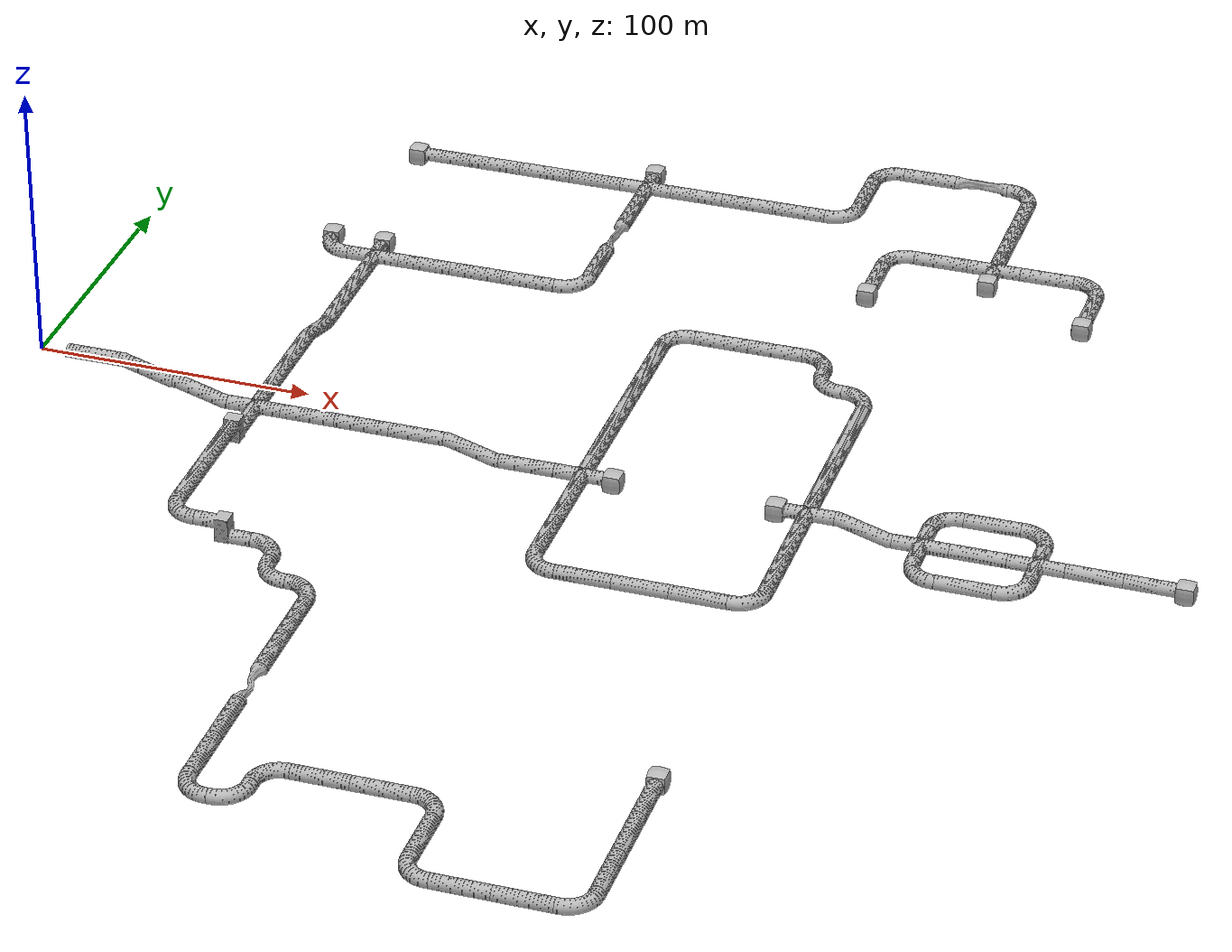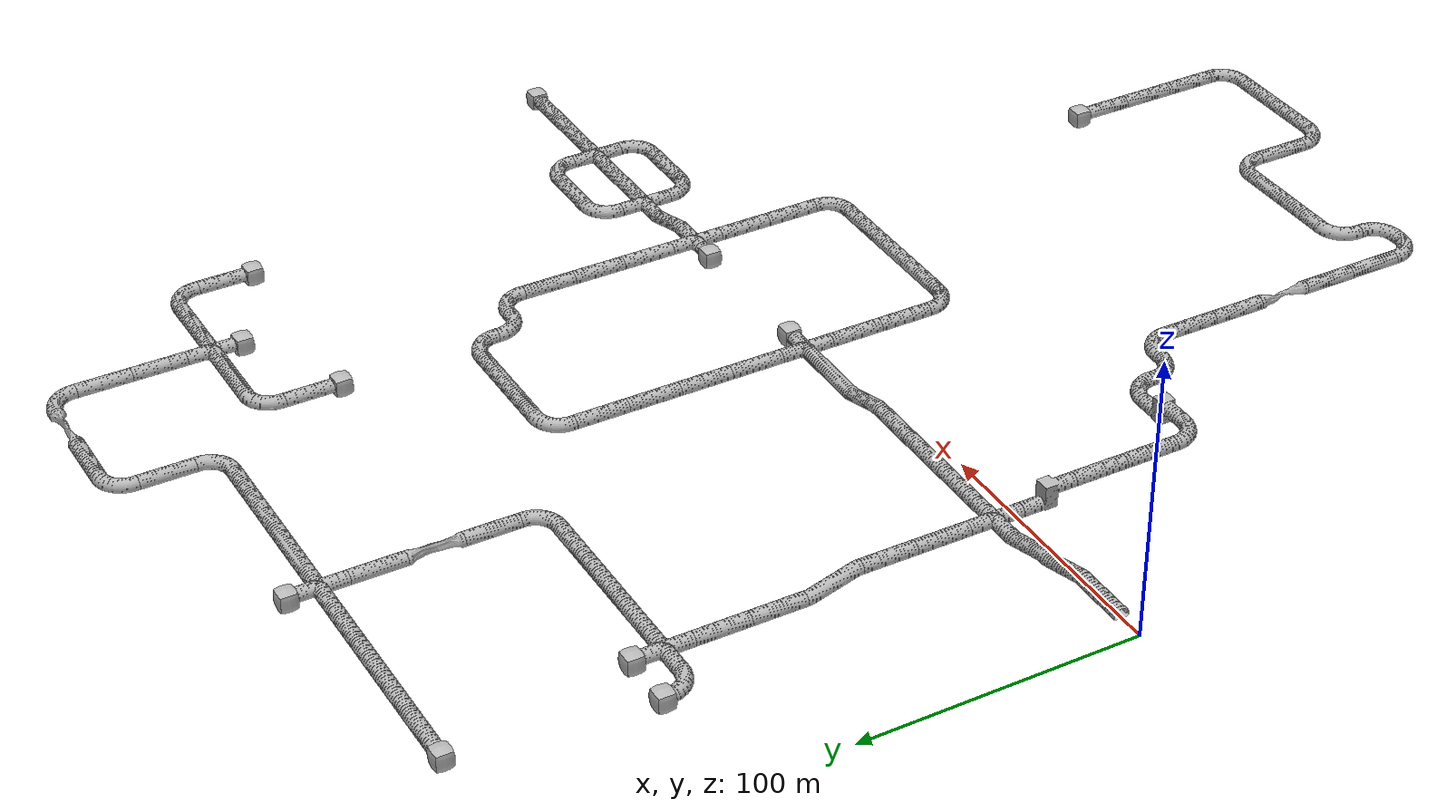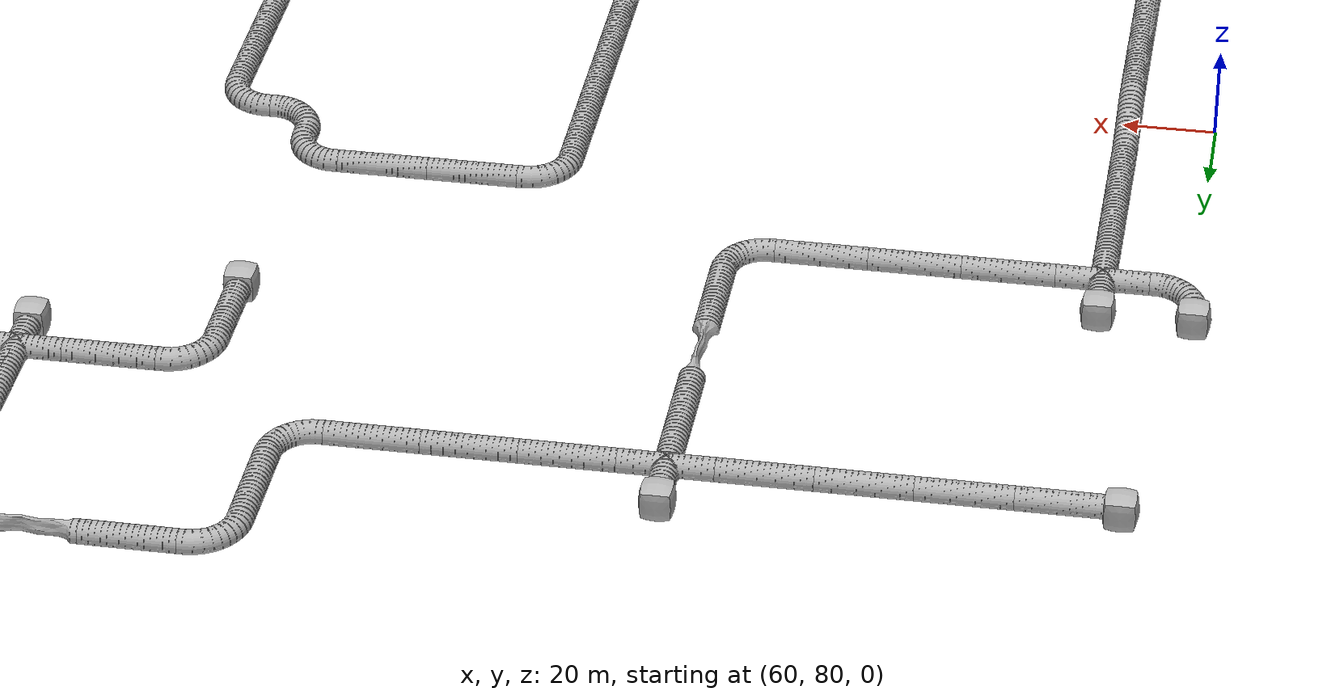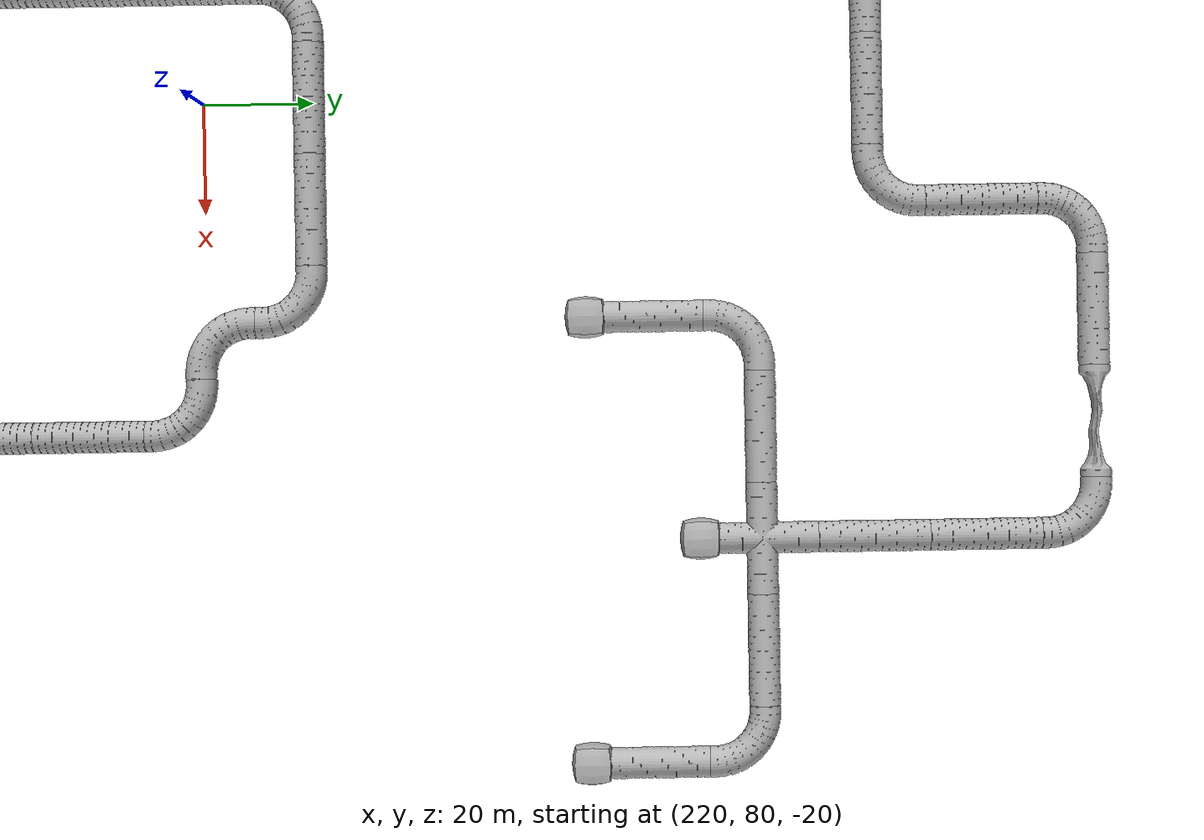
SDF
<sdf version="1.6">
 <world name="tunnel_qual">
  <scene>
   <ambient>0.2 0.2 0.2 1.0</ambient>
   <background>0.34 0.39 0.43 1.0</background>
   <grid>false</grid>
   <origin_visual>false</origin_visual>
  </scene>
  <include><name>artifact_origin</name><pose>2 4 0.5 0 0 0</pose><uri>model://fiducial</uri></include>
  <include>
   <name>tile_1</name>
   <uri>model://tunnel_tile_2</uri>
   <pose>240.000000 240.000000 -15.000000 0 0 0.000000</pose>
  </include>
  <include>
   <name>tile_2</name>
   <uri>model://tunnel_tile_5</uri>
   <pose>260.000000 240.000000 -15.000000 0 0 1.570796</pose>
  </include>
  <include>
   <name>tile_3</name>
   <uri>model://constrained_tunnel_tile_tall</uri>
   <pose>280.000000 240.000000 -15.000000 0 0 1.570796</pose>
  </include>
  <include>
   <name>tile_4</name>
   <uri>model://tunnel_tile_2</uri>
   <pose>300.000000 240.000000 -15.000000 0 0 4.712389</pose>
  </include>
  <include>
   <name>tile_5</name>
   <uri>model://tunnel_tile_5</uri>
   <pose>240.000000 220.000000 -15.000000 0 0 0.000000</pose>
  </include>
  <include>
   <name>radio_1</name>
   <uri>model://Radio</uri>
   <pose>241.500000 220.000000 -15.000000 0 0 0.000000</pose>
  </include>
  <include>
   <name>tile_6</name>
   <uri>model://tunnel_tile_5</uri>
   <pose>300.000000 220.000000 -15.000000 0 0 0.000000</pose>
  </include>
  <include>
   <name>tile_7</name>
   <uri>model://tunnel_tile_5</uri>
   <pose>80.000000 200.000000 -15.000000 0 0 1.570796</pose>
  </include>
  <include>
   <name>tile_8</name>
   <uri>model://tunnel_tile_blocker</uri>
   <pose>69.000000 200.000000 -15.000000 0 0 0.000000</pose>
  </include>
  <include>
   <name>tile_9</name>
   <uri>model://tunnel_tile_5</uri>
   <pose>100.000000 200.000000 -15.000000 0 0 1.570796</pose>
  </include>
  <include>
   <name>tile_10</name>
   <uri>model://tunnel_tile_5</uri>
   <pose>120.000000 200.000000 -15.000000 0 0 1.570796</pose>
  </include>
  <include>
   <name>tile_11</name>
   <uri>model://tunnel_tile_5</uri>
   <pose>140.000000 200.000000 -15.000000 0 0 1.570796</pose>
  </include>
  <include>
   <name>tile_12</name>
   <uri>model://tunnel_tile_1</uri>
   <pose>160.000000 200.000000 -15.000000 0 0 0.000000</pose>
  </include>
  <include>
   <name>tile_13</name>
   <uri>model://tunnel_tile_blocker</uri>
   <pose>160.000000 211.000000 -15.000000 0 0 0.000000</pose>
  </include>
  <include>
   <name>tile_14</name>
   <uri>model://tunnel_tile_5</uri>
   <pose>180.000000 200.000000 -15.000000 0 0 1.570796</pose>
  </include>
  <include>
   <name>tile_15</name>
   <uri>model://tunnel_tile_5</uri>
   <pose>200.000000 200.000000 -15.000000 0 0 1.570796</pose>
  </include>
  <include>
   <name>tile_16</name>
   <uri>model://tunnel_tile_5</uri>
   <pose>220.000000 200.000000 -15.000000 0 0 1.570796</pose>
  </include>
  <include>
   <name>backpack_1</name>
   <uri>model://Backpack</uri>
   <pose>219.000000 202.000000 -15.000000 0 0 0.000000</pose>
  </include>
  <include>
   <name>tile_17</name>
   <uri>model://tunnel_tile_2</uri>
   <pose>240.000000 200.000000 -15.000000 0 0 3.141593</pose>
  </include>
  <include>
   <name>tile_18</name>
   <uri>model://tunnel_tile_5</uri>
   <pose>300.000000 200.000000 -15.000000 0 0 0.000000</pose>
  </include>
  <include>
   <name>tile_19</name>
   <uri>model://tunnel_tile_5</uri>
   <pose>160.000000 180.000000 -15.000000 0 0 0.000000</pose>
  </include>
  <include>
   <name>tile_20</name>
   <uri>model://tunnel_tile_2</uri>
   <pose>260.000000 180.000000 -15.000000 0 0 0.000000</pose>
  </include>
  <include>
   <name>tile_21</name>
   <uri>model://tunnel_tile_5</uri>
   <pose>280.000000 180.000000 -15.000000 0 0 1.570796</pose>
  </include>
  <include>
   <name>tile_22</name>
   <uri>model://tunnel_tile_1</uri>
   <pose>300.000000 180.000000 -15.000000 0 0 0.000000</pose>
  </include>
  <include>
   <name>tile_23</name>
   <uri>model://tunnel_tile_blocker</uri>
   <pose>300.000000 169.000000 -15.000000 0 0 0.000000</pose>
  </include>
  <include>
   <name>tile_24</name>
   <uri>model://tunnel_tile_5</uri>
   <pose>320.000000 180.000000 -15.000000 0 0 1.570796</pose>
  </include>
  <include>
   <name>tile_25</name>
   <uri>model://tunnel_tile_2</uri>
   <pose>340.000000 180.000000 -15.000000 0 0 4.712389</pose>
  </include>
  <include>
   <name>tile_26</name>
   <uri>model://constrained_tunnel_tile_tall</uri>
   <pose>160.000000 160.000000 -15.000000 0 0 0.000000</pose>
  </include>
  <include>
   <name>tile_27</name>
   <uri>model://tunnel_tile_5</uri>
   <pose>260.000000 160.000000 -15.000000 0 0 0.000000</pose>
  </include>
  <include>
   <name>phone_1</name>
   <uri>model://Phone</uri>
   <pose>260.000000 160.000000 -14.996000 -1.570796 0 0.000000</pose>
  </include>
  <include>
   <name>tile_28</name>
   <uri>model://tunnel_tile_blocker</uri>
   <pose>260.000000 149.000000 -15.000000 0 0 0.000000</pose>
  </include>
  <include>
   <name>tile_29</name>
   <uri>model://tunnel_tile_5</uri>
   <pose>340.000000 160.000000 -15.000000 0 0 0.000000</pose>
  </include>
  <include>
   <name>toolbox_1</name>
   <uri>model://Toolbox</uri>
   <pose>342.000000 160.000000 -15.000000 0 0 0.000000</pose>
  </include>
  <include>
   <name>tile_30</name>
   <uri>model://tunnel_tile_blocker</uri>
   <pose>340.000000 149.000000 -15.000000 0 0 0.000000</pose>
  </include>
  <include>
   <name>tile_31</name>
   <uri>model://tunnel_tile_5</uri>
   <pose>160.000000 140.000000 -15.000000 0 0 0.000000</pose>
  </include>
  <include>
   <name>extinguisher_1</name>
   <uri>model://Extinguisher</uri>
   <pose>158.000000 140.000000 -15.000000 0 0 0.000000</pose>
  </include>
  <include>
   <name>tile_32</name>
   <uri>model://tunnel_tile_2</uri>
   <pose>60.000000 120.000000 -15.000000 0 0 1.570796</pose>
  </include>
  <include>
   <name>tile_33</name>
   <uri>model://tunnel_tile_blocker</uri>
   <pose>60.000000 131.000000 -15.000000 0 0 0.000000</pose>
  </include>
  <include>
   <name>tile_34</name>
   <uri>model://tunnel_tile_1</uri>
   <pose>80.000000 120.000000 -15.000000 0 0 0.000000</pose>
  </include>
  <include>
   <name>tile_35</name>
   <uri>model://tunnel_tile_blocker</uri>
   <pose>80.000000 131.000000 -15.000000 0 0 0.000000</pose>
  </include>
  <include>
   <name>tile_36</name>
   <uri>model://tunnel_tile_5</uri>
   <pose>100.000000 120.000000 -15.000000 0 0 1.570796</pose>
  </include>
  <include>
   <name>tile_37</name>
   <uri>model://tunnel_tile_5</uri>
   <pose>120.000000 120.000000 -15.000000 0 0 1.570796</pose>
  </include>
  <include>
   <name>tile_38</name>
   <uri>model://tunnel_tile_5</uri>
   <pose>140.000000 120.000000 -15.000000 0 0 1.570796</pose>
  </include>
  <include>
   <name>tile_39</name>
   <uri>model://tunnel_tile_2</uri>
   <pose>160.000000 120.000000 -15.000000 0 0 3.141593</pose>
  </include>
  <include>
   <name>tile_40</name>
   <uri>model://tunnel_tile_5</uri>
   <pose>80.000000 100.000000 -15.000000 0 0 0.000000</pose>
  </include>
  <include>
   <name>tile_41</name>
   <uri>model://tunnel_tile_2</uri>
   <pose>200.000000 100.000000 -15.000000 0 0 0.000000</pose>
  </include>
  <include>
   <name>tile_42</name>
   <uri>model://tunnel_tile_5</uri>
   <pose>220.000000 100.000000 -15.000000 0 0 1.570796</pose>
  </include>
  <include>
   <name>tile_43</name>
   <uri>model://tunnel_tile_5</uri>
   <pose>240.000000 100.000000 -15.000000 0 0 1.570796</pose>
  </include>
  <include>
   <name>tile_44</name>
   <uri>model://tunnel_tile_2</uri>
   <pose>260.000000 100.000000 -15.000000 0 0 4.712389</pose>
  </include>
  <include>
   <name>tile_45</name>
   <uri>model://tunnel_tile_5</uri>
   <pose>80.000000 80.000000 -15.000000 0 0 0.000000</pose>
  </include>
  <include>
   <name>tile_46</name>
   <uri>model://tunnel_tile_5</uri>
   <pose>200.000000 80.000000 -15.000000 0 0 0.000000</pose>
  </include>
  <include>
   <name>tile_47</name>
   <uri>model://tunnel_tile_2</uri>
   <pose>260.000000 80.000000 -15.000000 0 0 1.570796</pose>
  </include>
  <include>
   <name>radio_2</name>
   <uri>model://Radio</uri>
   <pose>260.000000 82.300000 -15.000000 0 0 0.000000</pose>
  </include>
  <include>
   <name>tile_48</name>
   <uri>model://tunnel_tile_2</uri>
   <pose>280.000000 80.000000 -15.000000 0 0 4.712389</pose>
  </include>
  <include>
   <name>tile_49</name>
   <uri>model://tunnel_tile_6</uri>
   <pose>80.000000 60.000000 -15.000000 0 0 3.141593</pose>
  </include>
  <include>
   <name>tile_50</name>
   <uri>model://tunnel_tile_5</uri>
   <pose>200.000000 60.000000 -15.000000 0 0 0.000000</pose>
  </include>
  <include>
   <name>tile_51</name>
   <uri>model://tunnel_tile_5</uri>
   <pose>280.000000 60.000000 -15.000000 0 0 0.000000</pose>
  </include>
  <include>
   <name>toolbox_2</name>
   <uri>model://Toolbox</uri>
   <pose>278.000000 60.000000 -15.000000 0 0 0.000000</pose>
  </include>
  <include>
   <name>tile_52</name>
   <uri>model://tunnel_tile_5</uri>
   <pose>80.000000 40.000000 -10.000000 0 0 0.000000</pose>
  </include>
  <include>
   <name>tile_53</name>
   <uri>model://tunnel_tile_5</uri>
   <pose>200.000000 40.000000 -15.000000 0 0 0.000000</pose>
  </include>
  <include>
   <name>tile_54</name>
   <uri>model://tunnel_tile_5</uri>
   <pose>280.000000 40.000000 -15.000000 0 0 0.000000</pose>
  </include>
  <include>
   <name>tile_55</name>
   <uri>model://tunnel_tile_5</uri>
   <pose>80.000000 20.000000 -10.000000 0 0 0.000000</pose>
  </include>
  <include>
   <name>tile_56</name>
   <uri>model://tunnel_tile_5</uri>
   <pose>200.000000 20.000000 -15.000000 0 0 0.000000</pose>
  </include>
  <include>
   <name>phone_2</name>
   <uri>model://Phone</uri>
   <pose>201.800000 20.000000 -14.996000 -1.570796 0 0.000000</pose>
  </include>
  <include>
   <name>tile_57</name>
   <uri>model://tunnel_tile_5</uri>
   <pose>280.000000 20.000000 -15.000000 0 0 0.000000</pose>
  </include>
  <include>
   <name>tile_58</name>
   <uri>model://tunnel_tile_2</uri>
   <pose>320.000000 20.000000 -20.000000 0 0 0.000000</pose>
  </include>
  <include>
   <name>tile_59</name>
   <uri>model://tunnel_tile_5</uri>
   <pose>340.000000 20.000000 -20.000000 0 0 1.570796</pose>
  </include>
  <include>
   <name>tile_60</name>
   <uri>model://tunnel_tile_2</uri>
   <pose>360.000000 20.000000 -20.000000 0 0 4.712389</pose>
  </include>
  <include>
   <name>tile_61</name>
   <uri>model://tunnel_tile_5</uri>
   <pose>20.000000 0.000000 0.000000 0 0 1.570796</pose>
  </include>
  <include>
   <name>tile_62</name>
   <uri>model://tunnel_tile_6</uri>
   <pose>40.000000 0.000000 -5.000000 0 0 1.570796</pose>
  </include>
  <include>
   <name>tile_63</name>
   <uri>model://tunnel_tile_6</uri>
   <pose>60.000000 0.000000 -10.000000 0 0 1.570796</pose>
  </include>
  <include>
   <name>tile_64</name>
   <uri>model://tunnel_tile_1</uri>
   <pose>80.000000 0.000000 -10.000000 0 0 0.000000</pose>
  </include>
  <include>
   <name>tile_65</name>
   <uri>model://tunnel_tile_5</uri>
   <pose>100.000000 0.000000 -10.000000 0 0 1.570796</pose>
  </include>
  <include>
   <name>tile_66</name>
   <uri>model://tunnel_tile_5</uri>
   <pose>120.000000 0.000000 -10.000000 0 0 1.570796</pose>
  </include>
  <include>
   <name>tile_67</name>
   <uri>model://tunnel_tile_5</uri>
   <pose>140.000000 0.000000 -10.000000 0 0 1.570796</pose>
  </include>
  <include>
   <name>tile_68</name>
   <uri>model://tunnel_tile_6</uri>
   <pose>160.000000 0.000000 -15.000000 0 0 1.570796</pose>
  </include>
  <include>
   <name>tile_69</name>
   <uri>model://tunnel_tile_5</uri>
   <pose>180.000000 0.000000 -15.000000 0 0 1.570796</pose>
  </include>
  <include>
   <name>tile_70</name>
   <uri>model://tunnel_tile_1</uri>
   <pose>200.000000 0.000000 -15.000000 0 0 0.000000</pose>
  </include>
  <include>
   <name>tile_71</name>
   <uri>model://tunnel_tile_blocker</uri>
   <pose>211.000000 0.000000 -15.000000 0 0 0.000000</pose>
  </include>
  <include>
   <name>tile_72</name>
   <uri>model://tunnel_tile_1</uri>
   <pose>280.000000 0.000000 -15.000000 0 0 0.000000</pose>
  </include>
  <include>
   <name>tile_73</name>
   <uri>model://tunnel_tile_blocker</uri>
   <pose>269.000000 0.000000 -15.000000 0 0 0.000000</pose>
  </include>
  <include>
   <name>tile_74</name>
   <uri>model://tunnel_tile_6</uri>
   <pose>300.000000 0.000000 -20.000000 0 0 1.570796</pose>
  </include>
  <include>
   <name>tile_75</name>
   <uri>model://tunnel_tile_1</uri>
   <pose>320.000000 0.000000 -20.000000 0 0 0.000000</pose>
  </include>
  <include>
   <name>tile_76</name>
   <uri>model://tunnel_tile_5</uri>
   <pose>340.000000 0.000000 -20.000000 0 0 1.570796</pose>
  </include>
  <include>
   <name>tile_77</name>
   <uri>model://tunnel_tile_1</uri>
   <pose>360.000000 0.000000 -20.000000 0 0 0.000000</pose>
  </include>
  <include>
   <name>tile_78</name>
   <uri>model://tunnel_tile_5</uri>
   <pose>380.000000 0.000000 -20.000000 0 0 1.570796</pose>
  </include>
  <include>
   <name>tile_79</name>
   <uri>model://tunnel_tile_5</uri>
   <pose>400.000000 0.000000 -20.000000 0 0 1.570796</pose>
  </include>
  <include>
   <name>electrical_box_1</name>
   <uri>model://Electrical Box</uri>
   <pose>400.000000 -1.000000 -20.000000 0 0 0.000000</pose>
  </include>
  <include>
   <name>tile_80</name>
   <uri>model://tunnel_tile_blocker</uri>
   <pose>411.000000 0.000000 -20.000000 0 0 0.000000</pose>
  </include>
  <include>
   <name>tile_81</name>
   <uri>model://tunnel_tile_7</uri>
   <pose>80.000000 -20.000000 -10.000000 0 0 3.141593</pose>
  </include>
  <include>
   <name>tile_82</name>
   <uri>model://tunnel_tile_5</uri>
   <pose>200.000000 -20.000000 -15.000000 0 0 0.000000</pose>
  </include>
  <include>
   <name>tile_83</name>
   <uri>model://tunnel_tile_5</uri>
   <pose>280.000000 -20.000000 -15.000000 0 0 0.000000</pose>
  </include>
  <include>
   <name>tile_84</name>
   <uri>model://tunnel_tile_2</uri>
   <pose>320.000000 -20.000000 -20.000000 0 0 1.570796</pose>
  </include>
  <include>
   <name>tile_85</name>
   <uri>model://tunnel_tile_5</uri>
   <pose>340.000000 -20.000000 -20.000000 0 0 1.570796</pose>
  </include>
  <include>
   <name>backpack_2</name>
   <uri>model://Backpack</uri>
   <pose>340.000000 -22.000000 -20.000000 0 0 0.000000</pose>
  </include>
  <include>
   <name>tile_86</name>
   <uri>model://tunnel_tile_2</uri>
   <pose>360.000000 -20.000000 -20.000000 0 0 3.141593</pose>
  </include>
  <include>
   <name>tile_87</name>
   <uri>model://tunnel_tile_5</uri>
   <pose>80.000000 -40.000000 -5.000000 0 0 0.000000</pose>
  </include>
  <include>
   <name>tile_88</name>
   <uri>model://tunnel_tile_5</uri>
   <pose>200.000000 -40.000000 -15.000000 0 0 0.000000</pose>
  </include>
  <include>
   <name>tile_89</name>
   <uri>model://tunnel_tile_5</uri>
   <pose>280.000000 -40.000000 -15.000000 0 0 0.000000</pose>
  </include>
  <include>
   <name>tile_90</name>
   <uri>model://tunnel_tile_5</uri>
   <pose>80.000000 -60.000000 -5.000000 0 0 0.000000</pose>
  </include>
  <include>
   <name>tile_91</name>
   <uri>model://tunnel_tile_2</uri>
   <pose>200.000000 -60.000000 -15.000000 0 0 1.570796</pose>
  </include>
  <include>
   <name>tile_92</name>
   <uri>model://tunnel_tile_5</uri>
   <pose>220.000000 -60.000000 -15.000000 0 0 1.570796</pose>
  </include>
  <include>
   <name>tile_93</name>
   <uri>model://tunnel_tile_5</uri>
   <pose>240.000000 -60.000000 -15.000000 0 0 1.570796</pose>
  </include>
  <include>
   <name>valve_1</name>
   <uri>model://Valve</uri>
   <pose>240.000000 -58.000000 -15.000000 0 0 0.000000</pose>
  </include>
  <include>
   <name>tile_94</name>
   <uri>model://tunnel_tile_5</uri>
   <pose>260.000000 -60.000000 -15.000000 0 0 1.570796</pose>
  </include>
  <include>
   <name>tile_95</name>
   <uri>model://tunnel_tile_2</uri>
   <pose>280.000000 -60.000000 -15.000000 0 0 3.141593</pose>
  </include>
  <include>
   <name>tile_96</name>
   <uri>model://tunnel_tile_2</uri>
   <pose>80.000000 -80.000000 -5.000000 0 0 1.570796</pose>
  </include>
  <include>
   <name>tile_97</name>
   <uri>model://tunnel_tile_7</uri>
   <pose>100.000000 -80.000000 -10.000000 0 0 1.570796</pose>
  </include>
  <include>
   <name>tile_98</name>
   <uri>model://tunnel_tile_2</uri>
   <pose>120.000000 -80.000000 -10.000000 0 0 4.712389</pose>
  </include>
  <include>
   <name>tile_99</name>
   <uri>model://tunnel_tile_2</uri>
   <pose>120.000000 -100.000000 -10.000000 0 0 1.570796</pose>
  </include>
  <include>
   <name>phone_3</name>
   <uri>model://Phone</uri>
   <pose>120.800000 -98.400000 -9.996000 1.570796 0 0.000000</pose>
  </include>
  <include>
   <name>tile_100</name>
   <uri>model://tunnel_tile_2</uri>
   <pose>140.000000 -100.000000 -10.000000 0 0 4.712389</pose>
  </include>
  <include>
   <name>tile_101</name>
   <uri>model://tunnel_tile_5</uri>
   <pose>140.000000 -120.000000 -10.000000 0 0 0.000000</pose>
  </include>
  <include>
   <name>valve_2</name>
   <uri>model://Valve</uri>
   <pose>141.750000 -119.000000 -10.000000 0 0 0.000000</pose>
  </include>
  <include>
   <name>tile_102</name>
   <uri>model://tunnel_tile_5</uri>
   <pose>140.000000 -140.000000 -10.000000 0 0 0.000000</pose>
  </include>
  <include>
   <name>tile_103</name>
   <uri>model://constrained_tunnel_tile_short</uri>
   <pose>140.000000 -160.000000 -10.000000 0 0 0.000000</pose>
  </include>
  <include>
   <name>tile_104</name>
   <uri>model://tunnel_tile_5</uri>
   <pose>140.000000 -180.000000 -10.000000 0 0 0.000000</pose>
  </include>
  <include>
   <name>electrical_box_2</name>
   <uri>model://Electrical Box</uri>
   <pose>138.000000 -180.000000 -10.000000 0 0 0.000000</pose>
  </include>
  <include>
   <name>tile_105</name>
   <uri>model://tunnel_tile_5</uri>
   <pose>280.000000 -180.000000 -10.000000 0 0 0.000000</pose>
  </include>
  <include>
   <name>tile_106</name>
   <uri>model://tunnel_tile_blocker</uri>
   <pose>280.000000 -169.000000 -10.000000 0 0 0.000000</pose>
  </include>
  <include>
   <name>tile_107</name>
   <uri>model://tunnel_tile_5</uri>
   <pose>140.000000 -200.000000 -10.000000 0 0 0.000000</pose>
  </include>
  <include>
   <name>tile_108</name>
   <uri>model://tunnel_tile_2</uri>
   <pose>160.000000 -200.000000 -10.000000 0 0 0.000000</pose>
  </include>
  <include>
   <name>tile_109</name>
   <uri>model://tunnel_tile_5</uri>
   <pose>180.000000 -200.000000 -10.000000 0 0 1.570796</pose>
  </include>
  <include>
   <name>backpack_3</name>
   <uri>model://Backpack</uri>
   <pose>180.000000 -198.000000 -10.000000 0 0 0.000000</pose>
  </include>
  <include>
   <name>tile_110</name>
   <uri>model://tunnel_tile_5</uri>
   <pose>200.000000 -200.000000 -10.000000 0 0 1.570796</pose>
  </include>
  <include>
   <name>tile_111</name>
   <uri>model://tunnel_tile_2</uri>
   <pose>220.000000 -200.000000 -10.000000 0 0 4.712389</pose>
  </include>
  <include>
   <name>tile_112</name>
   <uri>model://tunnel_tile_5</uri>
   <pose>280.000000 -200.000000 -10.000000 0 0 0.000000</pose>
  </include>
  <include>
   <name>tile_113</name>
   <uri>model://tunnel_tile_2</uri>
   <pose>140.000000 -220.000000 -10.000000 0 0 1.570796</pose>
  </include>
  <include>
   <name>tile_114</name>
   <uri>model://tunnel_tile_2</uri>
   <pose>160.000000 -220.000000 -10.000000 0 0 3.141593</pose>
  </include>
  <include>
   <name>tile_115</name>
   <uri>model://tunnel_tile_5</uri>
   <pose>220.000000 -220.000000 -10.000000 0 0 0.000000</pose>
  </include>
  <include>
   <name>tile_116</name>
   <uri>model://tunnel_tile_5</uri>
   <pose>280.000000 -220.000000 -10.000000 0 0 0.000000</pose>
  </include>
  <include>
   <name>extinguisher_2</name>
   <uri>model://Extinguisher</uri>
   <pose>278.000000 -220.000000 -10.000000 0 0 0.000000</pose>
  </include>
  <include>
   <name>tile_117</name>
   <uri>model://tunnel_tile_2</uri>
   <pose>220.000000 -240.000000 -10.000000 0 0 1.570796</pose>
  </include>
  <include>
   <name>tile_118</name>
   <uri>model://tunnel_tile_5</uri>
   <pose>240.000000 -240.000000 -10.000000 0 0 1.570796</pose>
  </include>
  <include>
   <name>tile_119</name>
   <uri>model://tunnel_tile_5</uri>
   <pose>260.000000 -240.000000 -10.000000 0 0 1.570796</pose>
  </include>
  <include>
   <name>tile_120</name>
   <uri>model://tunnel_tile_2</uri>
   <pose>280.000000 -240.000000 -10.000000 0 0 3.141593</pose>
  </include>
  <plugin name="game_logic_plugin" filename="libGameLogicPlugin.so">
   <logging><filename_prefix>subt_tunnel_qual</filename_prefix></logging>
   <artifact><name>radio_1</name><type>TYPE_RADIO</type></artifact>
   <artifact><name>backpack_1</name><type>TYPE_BACKPACK</type></artifact>
   <artifact><name>phone_1</name><type>TYPE_PHONE</type></artifact>
   <artifact><name>toolbox_1</name><type>TYPE_TOOLBOX</type></artifact>
   <artifact><name>extinguisher_1</name><type>TYPE_EXTINGUISHER</type></artifact>
   <artifact><name>radio_2</name><type>TYPE_RADIO</type></artifact>
   <artifact><name>toolbox_2</name><type>TYPE_TOOLBOX</type></artifact>
   <artifact><name>phone_2</name><type>TYPE_PHONE</type></artifact>
   <artifact><name>electrical_box_1</name><type>TYPE_ELECTRICAL_BOX</type></artifact>
   <artifact><name>backpack_2</name><type>TYPE_BACKPACK</type></artifact>
   <artifact><name>valve_1</name><type>TYPE_VALVE</type></artifact>
   <artifact><name>phone_3</name><type>TYPE_PHONE</type></artifact>
   <artifact><name>valve_2</name><type>TYPE_VALVE</type></artifact>
   <artifact><name>electrical_box_2</name><type>TYPE_ELECTRICAL_BOX</type></artifact>
   <artifact><name>backpack_3</name><type>TYPE_BACKPACK</type></artifact>
   <artifact><name>extinguisher_2</name><type>TYPE_EXTINGUISHER</type></artifact>
  </plugin>
  <plugin name="comms_broker_plugin" filename="libCommsBrokerPlugin.so">
   <comms_model>
    <comms_model_type>visibility_range</comms_model_type>
    <range_config>
     <max_range>500.0</max_range>
     <fading_exponent>2.5</fading_exponent>
     <L0>40</L0>
     <sigma>10.0</sigma>
    </range_config>
    <visibility_config>
     <visibility_cost_to_fading_exponent>0.2</visibility_cost_to_fading_exponent>
     <comms_cost_max>15</comms_cost_max>
    </visibility_config>
    <radio_config>
     <capacity>1000000</capacity>
     <tx_power>20</tx_power>
     <noise_floor>-90</noise_floor>
     <modulation>QPSK</modulation>
    </radio_config>
   </comms_model>
  </plugin>
  <plugin name="ros_interface_plugin" filename="librotors_gazebo_ros_interface_plugin.so"/>
  <wind><linear_velocity>0.000000 0.000000 0.000000</linear_velocity></wind>
  <plugin name="wind" filename="libWindPlugin.so">
   <horizontal>
    <magnitude>
     <time_for_rise>10</time_for_rise>
     <sin><amplitude_percent>0.05</amplitude_percent><period>60</period></sin>
     <noise type="gaussian"><mean>0</mean><stddev>0.0002</stddev></noise>
    </magnitude>
    <direction>
     <time_for_rise>30</time_for_rise>
     <sin><amplitude>5</amplitude><period>20</period></sin>
     <noise type="gaussian"><mean>0</mean><stddev>0.03</stddev></noise>
    </direction>
   </horizontal>
   <vertical><noise type="gaussian"><mean>0</mean><stddev>0.03</stddev></noise></vertical>
  </plugin>
 </world>
</sdf>

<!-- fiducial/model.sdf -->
<sdf version='1.6'>
  <model name='fiducial'>
    <static>true</static>
    <link name='link'>
    </link>
  </model>
</sdf>

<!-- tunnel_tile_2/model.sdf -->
<sdf version="1.6">
  <model name="tunnel_tile_2">
    <static>true</static>
    <link name="link">
      <collision name="collision">
        <geometry>
          <mesh>
            <uri>model://tunnel_tile_2/meshes/tunnel_tile_2.dae</uri>
          </mesh>
        </geometry>
      </collision>
      <collision name="collision_ground">
        <pose>3.5 -3.5 0 0 0 0</pose>
        <geometry>
          <box>
            <size>13 13 0.001</size>
          </box>
        </geometry>
      </collision>
      <visual name="visual">
        <geometry>
          <mesh>
            <uri>model://tunnel_tile_2/meshes/tunnel_tile_2.dae</uri>
          </mesh>
        </geometry>
      </visual>
    </link>
  </model>
</sdf>

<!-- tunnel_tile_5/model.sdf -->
<sdf version="1.6">
  <model name="tunnel_tile_5">
    <static>true</static>
    <link name="link">
      <collision name="collision">
        <geometry>
          <mesh>
            <uri>model://tunnel_tile_5/meshes/tunnel_tile_5.dae</uri>
          </mesh>
        </geometry>
      </collision>
      <collision name="collision_ground">
        <geometry>
          <box>
            <size>5 20 0.001</size>
          </box>
        </geometry>
      </collision>
      <visual name="visual">
        <geometry>
          <mesh>
            <uri>model://tunnel_tile_5/meshes/tunnel_tile_5.dae</uri>
          </mesh>
        </geometry>
      </visual>
    </link>
  </model>
</sdf>

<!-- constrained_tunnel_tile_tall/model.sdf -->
<sdf version="1.6">
  <model name="constrained_tunnel_tile_tall">
    <static>true</static>
    <link name="link">
      <collision name="collision">
        <geometry>
          <mesh>
            <uri>model://constrained_tunnel_tile_tall/meshes/Constrained_Tall.DAE</uri>
          </mesh>
        </geometry>
      </collision>
      <collision name="collision_ground">
        <geometry>
          <box>
            <size>5 20 0.001</size>
          </box>
        </geometry>
      </collision>
      <visual name="visual">
        <geometry>
          <mesh>
            <uri>model://constrained_tunnel_tile_tall/meshes/Constrained_Tall.DAE</uri>
          </mesh>
        </geometry>
      </visual>
    </link>
  </model>
</sdf>

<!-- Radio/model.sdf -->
<sdf version='1.6'>
  <model name='Radio'>
    <static>true</static>
    <link name='link'>
      <collision name='collision'>
        <geometry>
          <mesh>
            <uri>model://Radio/meshes/Radio.dae</uri>
          </mesh>
        </geometry>
      </collision>
      <visual name='visual'>
        <geometry>
          <mesh>
            <uri>model://Radio/meshes/Radio.dae</uri>
          </mesh>
        </geometry>
        <plugin name='light_source_visualize' filename='libLightVisualPlugin.so'>
          <light>
            <id>light_source</id>
            <visualize>false</visualize>
          </light>
        </plugin>
      </visual>
      <light name='light_source' type='point'>
        <pose>0.0137 -0.02 0.109 0 0 0</pose>
        <attenuation>
          <range>2.0</range>
          <constant>0.2</constant>
          <linear>0.10</linear>
          <quadratic>0.1</quadratic>
        </attenuation>
        <diffuse>1 0 0 1</diffuse>
        <specular>1 0 0 1</specular>
      </light>
    </link>

    <plugin name='light_control' filename='libFlashLightPlugin.so'>
      <light>
        <id>link/light_source</id>
        <duration>1.0</duration>
        <interval>3.0</interval>
        <color>1 0 0</color>
      </light>
    </plugin>

  </model>
</sdf>

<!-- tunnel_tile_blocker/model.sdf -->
<sdf version="1.6">
  <model name="tunnel_tile_blocker">
    <static>true</static>
    <link name="link">
      <pose>0 0 0 0 0 0</pose>
      <collision name="collision">
        <geometry>
          <mesh>
            <uri>model://tunnel_tile_blocker/meshes/tunnel_tile_blocker.dae</uri>
          </mesh>
        </geometry>
      </collision>
      <visual name="visual">
        <geometry>
          <mesh>
            <uri>model://tunnel_tile_blocker/meshes/tunnel_tile_blocker.dae</uri>
          </mesh>
        </geometry>
      </visual>
    </link>
  </model>
</sdf>

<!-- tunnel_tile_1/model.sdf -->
<sdf version="1.6">
  <model name="tunnel_tile_1">
    <static>true</static>
    <link name="link">
      <collision name="collision">
        <geometry>
          <mesh>
            <uri>model://tunnel_tile_1/meshes/tunnel_tile_1.dae</uri>
          </mesh>
        </geometry>
      </collision>
      <collision name="collision_ground">
        <geometry>
          <box>
            <size>20 20 0.001</size>
          </box>
        </geometry>
      </collision>
      <visual name="visual">
        <geometry>
          <mesh>
            <uri>model://tunnel_tile_1/meshes/tunnel_tile_1.dae</uri>
          </mesh>
        </geometry>
      </visual>
    </link>
  </model>
</sdf>

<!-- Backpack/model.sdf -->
<sdf version='1.6'>
  <model name='Backpack'>
    <static>true</static>
    <link name='link'>
      <collision name='collision'>
        <geometry>
          <mesh>
            <uri>model://Backpack/meshes/Backpack.dae</uri>
          </mesh>
        </geometry>
      </collision>
      <visual name='visual'>
        <geometry>
          <mesh>
            <uri>model://Backpack/meshes/Backpack.dae</uri>
          </mesh>
        </geometry>
      </visual>
    </link>
  </model>
</sdf>

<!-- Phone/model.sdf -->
<sdf version='1.6'>
  <model name='Phone'>
    <static>true</static>
    <link name='link'>
      <collision name='collision'>
        <geometry>
          <mesh>
            <uri>model://Phone/meshes/Phone.dae</uri>
          </mesh>
        </geometry>
      </collision>
      <visual name='visual'>
        <geometry>
          <mesh>
            <uri>model://Phone/meshes/Phone.dae</uri>
          </mesh>
        </geometry>
      </visual>
    </link>
  </model>
</sdf>

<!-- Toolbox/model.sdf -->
<sdf version='1.6'>
  <model name='Toolbox'>
    <static>true</static>
    <link name='link'>
      <collision name='collision'>
        <geometry>
          <mesh>
            <uri>model://Toolbox/meshes/Toolbox.dae</uri>
          </mesh>
        </geometry>
      </collision>
      <visual name='visual'>
        <geometry>
          <mesh>
            <uri>model://Toolbox/meshes/Toolbox.dae</uri>
          </mesh>
        </geometry>
      </visual>
    </link>
  </model>
</sdf>

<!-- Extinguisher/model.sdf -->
<sdf version='1.6'>
  <model name='Extinguisher'>
    <static>true</static>
    <link name='link'>
      <collision name='collision'>
        <geometry>
          <mesh>
            <uri>model://Extinguisher/meshes/Extinguisher.dae</uri>
          </mesh>
        </geometry>
      </collision>
      <visual name='visual'>
        <geometry>
          <mesh>
            <uri>model://Extinguisher/meshes/Extinguisher.dae</uri>
          </mesh>
        </geometry>
      </visual>
    </link>
  </model>
</sdf>

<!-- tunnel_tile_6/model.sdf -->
<sdf version="1.6">
  <model name="tunnel_tile_6">
    <static>true</static>
    <link name="link">
      <pose>0 0 0 0 0 0</pose>
      <collision name="collision">
        <geometry>
          <mesh>
            <uri>model://tunnel_tile_6/meshes/tunnel_tile_6.dae</uri>
          </mesh>
        </geometry>
      </collision>

      <collision name="collision_ground_1">
        <pose>0 9.323 5 0 0 0</pose>
        <geometry>
          <box>
            <size>6.356 1.354 0.001</size>
          </box>
        </geometry>
      </collision>

      <collision name="collision_ground_2">
        <pose>0 -0.070 2.467 0.2827433 0 0</pose>
        <geometry>
          <box>
            <size>6.356 18.152 0.001</size>
          </box>
        </geometry>
      </collision>

      <collision name="collision_ground_3">
        <pose>0 -9.272 0 0 0 0</pose>
        <geometry>
          <box>
            <size>6.356 1.455 0.001</size>
          </box>
        </geometry>
      </collision>

      <visual name="visual">
        <geometry>
          <mesh>
            <uri>model://tunnel_tile_6/meshes/tunnel_tile_6.dae</uri>
          </mesh>
        </geometry>
      </visual>
    </link>
  </model>
</sdf>

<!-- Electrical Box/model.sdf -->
<sdf version='1.6'>
  <model name='Electrical Box'>
    <static>true</static>
    <link name='link'>
      <pose>0 0 0 1.57 3.14159 0</pose>
      <collision name='collision'>
        <geometry>
          <mesh>
            <uri>model://Electrical Box/meshes/Electrical Box.dae</uri>
          </mesh>
        </geometry>
      </collision>
      <visual name='visual'>
        <geometry>
          <mesh>
            <uri>model://Electrical Box/meshes/Electrical Box.dae</uri>
          </mesh>
        </geometry>
      </visual>
    </link>
  </model>
</sdf>

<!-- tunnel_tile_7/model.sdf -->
<sdf version="1.6">
  <model name="tunnel_tile_7">
    <static>true</static>
    <link name="link">
      <collision name="collision">
        <geometry>
          <mesh>
            <uri>model://tunnel_tile_7/meshes/tunnel_tile_7.dae</uri>
          </mesh>
        </geometry>
      </collision>
      <collision name="collision_ground_1">
        <pose>0 6.14028 5 0 0 0</pose>
        <geometry>
          <box>
            <size>6.19538 7.71943 0.001</size>
          </box>
        </geometry>
      </collision>

      <collision name="collision_ground_2">
        <pose>0 2.28057 2.5 0 0 0</pose>
        <geometry>
          <box>
            <size>6.19538 0.001 5</size>
          </box>
        </geometry>
      </collision>
      <collision name="collision_ground_3">
        <pose>0 -3.8572 0 0 0 0</pose>
        <geometry>
          <box>
            <size>6.19538 12.2806 0.001</size>
          </box>
        </geometry>
      </collision>
      <collision name="collision_ground_4">
        <pose>0 -2.42079 6.38525 0 0 0</pose>
        <geometry>
          <box>
            <size>6.19538 0.001 5.69769</size>
          </box>
        </geometry>
      </collision>
      <collision name="collision_ground_5">
        <pose>-2.83306 0.079873 4.58439 0 0 0</pose>
        <geometry>
          <box>
            <size>0.001 5.1333 9.16878</size>
          </box>
        </geometry>
      </collision>
      <collision name="collision_ground_6">
        <pose>2.83306 0.079873 4.58439 0 0 0</pose>
        <geometry>
          <box>
            <size>0.001 5.1333 9.16878</size>
          </box>
        </geometry>
      </collision>
      <collision name="collision_ground_7">
        <pose>0 0.079873 8.72854 0 0 0</pose>
        <geometry>
          <box>
            <size>6.95991 5.1333 0.001</size>
          </box>
        </geometry>
      </collision>

      <visual name="visual">
        <geometry>
          <mesh>
            <uri>model://tunnel_tile_7/meshes/tunnel_tile_7.dae</uri>
          </mesh>
        </geometry>
      </visual>
    </link>
  </model>
</sdf>

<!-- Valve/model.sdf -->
<sdf version='1.6'>
  <model name='Valve'>
    <static>true</static>
    <link name='link'>
      <collision name='collision'>
        <geometry>
          <mesh>
            <uri>model://Valve/meshes/Valve.dae</uri>
          </mesh>
        </geometry>
      </collision>
      <visual name='visual'>
        <geometry>
          <mesh>
            <uri>model://Valve/meshes/Valve.dae</uri>
          </mesh>
        </geometry>
      </visual>
    </link>
  </model>
</sdf>

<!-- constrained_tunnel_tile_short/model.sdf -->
<sdf version="1.6">
  <model name="constrained_tunnel_tile_short">
    <static>true</static>
    <link name="link">
      <collision name="collision">
        <geometry>
          <mesh>
            <uri>model://constrained_tunnel_tile_short/meshes/Constrained_Short.DAE</uri>
          </mesh>
        </geometry>
      </collision>
      <collision name="collision_ground">
        <geometry>
          <box>
            <size>5 20 0.001</size>
          </box>
        </geometry>
      </collision>
      <visual name="visual">
        <geometry>
          <mesh>
            <uri>model://constrained_tunnel_tile_short/meshes/Constrained_Short.DAE</uri>
          </mesh>
        </geometry>
      </visual>
    </link>
  </model>
</sdf>
